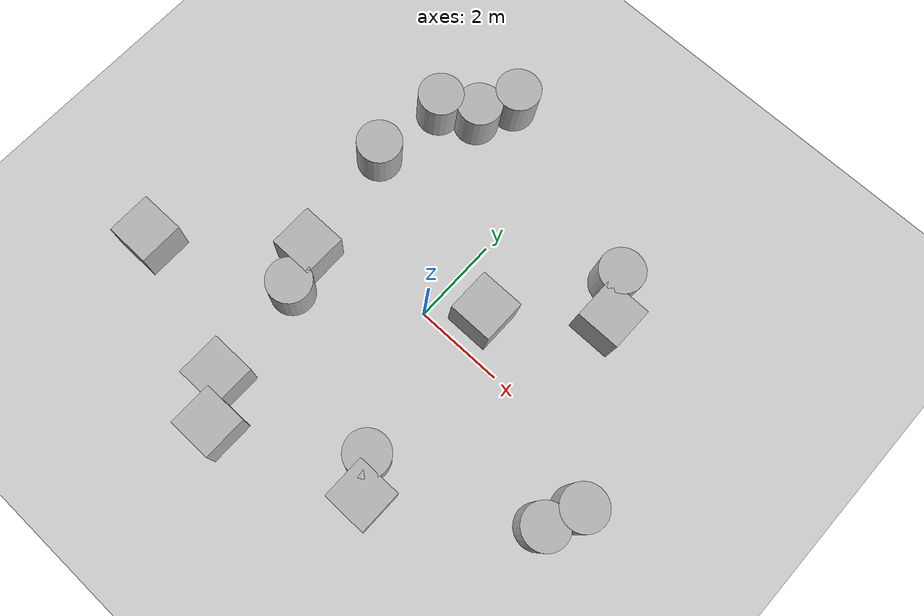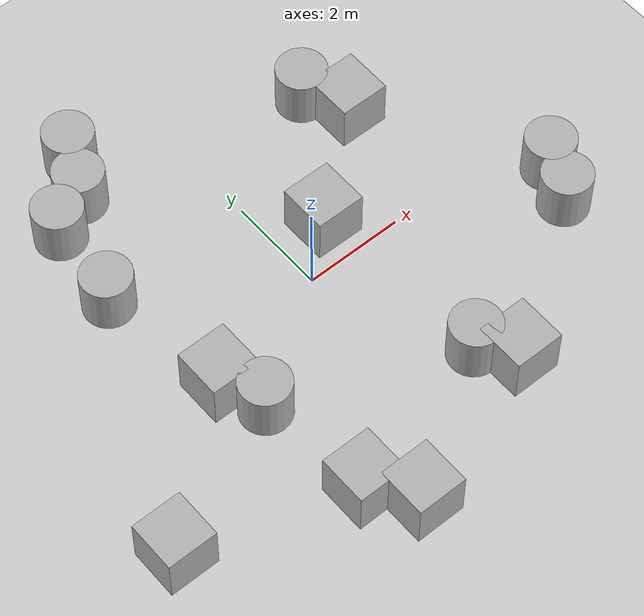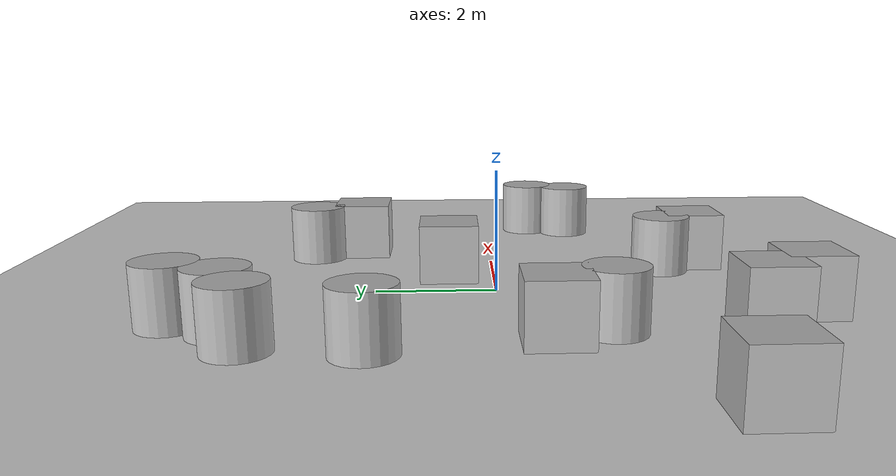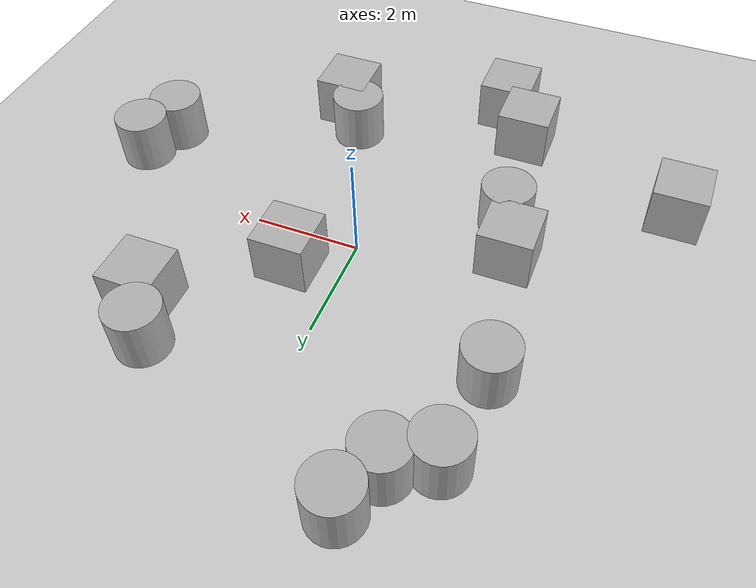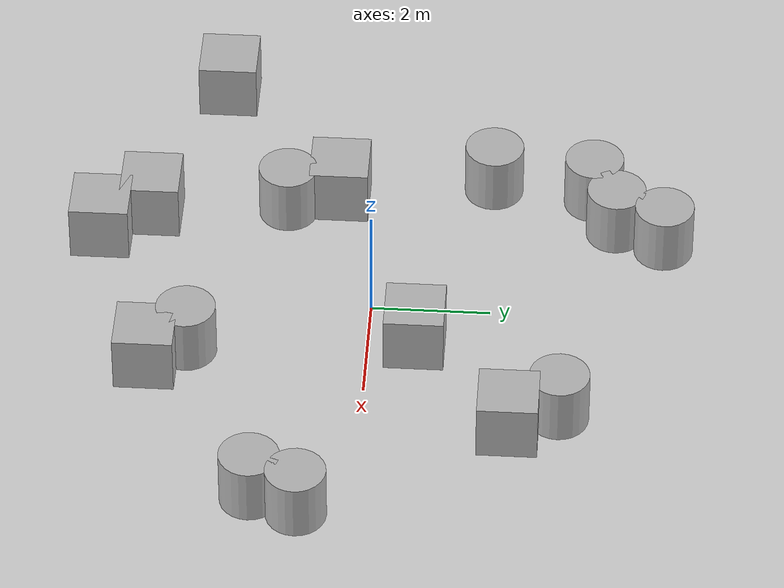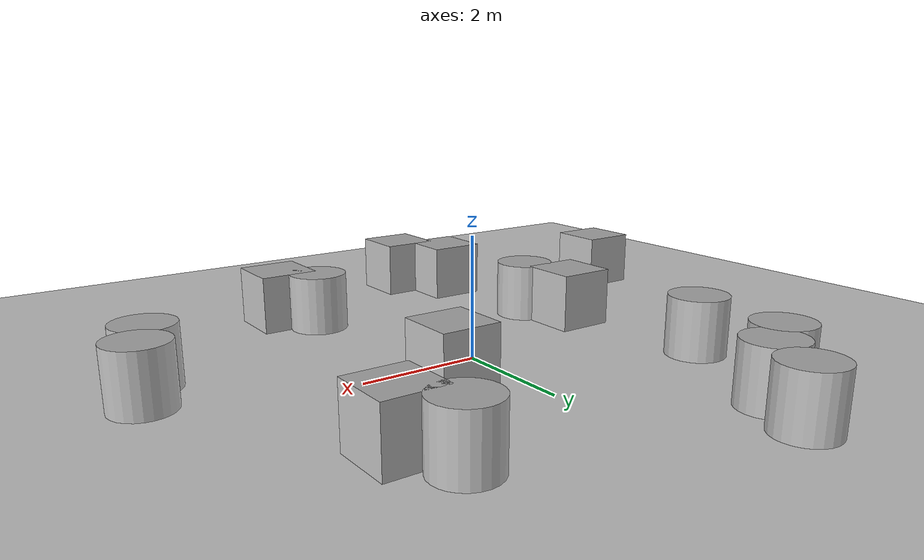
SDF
<sdf version='1.9'>
  <world name='empty'>
    <physics name='1ms' type='ignored'>
      <max_step_size>0.001</max_step_size>
      <real_time_factor>1</real_time_factor>
      <real_time_update_rate>1000</real_time_update_rate>
    </physics>
    <plugin name='gz::sim::systems::Physics' filename='gz-sim-physics-system'/>
    <plugin name='gz::sim::systems::UserCommands' filename='gz-sim-user-commands-system'/>
    <plugin name='gz::sim::systems::SceneBroadcaster' filename='gz-sim-scene-broadcaster-system'/>
    <plugin name='gz::sim::systems::Contact' filename='gz-sim-contact-system'/>
    <gravity>0 0 -9.8000000000000007</gravity>
    <magnetic_field>5.5644999999999998e-06 2.2875799999999999e-05 -4.2388400000000002e-05</magnetic_field>
    <atmosphere type='adiabatic'/>
    <scene>
      <ambient>0.400000006 0.400000006 0.400000006 1</ambient>
      <background>0.699999988 0.699999988 0.699999988 1</background>
      <shadows>true</shadows>
    </scene>
    <model name='ground_plane'>
      <static>true</static>
      <link name='link'>
        <collision name='collision'>
          <geometry>
            <plane>
              <normal>0 0 1</normal>
              <size>100 100</size>
            </plane>
          </geometry>
          <surface>
            <friction>
              <ode/>
            </friction>
            <bounce/>
            <contact/>
          </surface>
        </collision>
        <visual name='visual'>
          <geometry>
            <plane>
              <normal>0 0 1</normal>
              <size>100 100</size>
            </plane>
          </geometry>
          <material>
            <ambient>0.800000012 0.800000012 0.800000012 1</ambient>
            <diffuse>0.800000012 0.800000012 0.800000012 1</diffuse>
            <specular>0.800000012 0.800000012 0.800000012 1</specular>
          </material>
        </visual>
        <pose>0 0 0 0 0 0</pose>
        <inertial>
          <pose>0 0 0 0 0 0</pose>
          <mass>1</mass>
          <inertia>
            <ixx>1</ixx>
            <ixy>0</ixy>
            <ixz>0</ixz>
            <iyy>1</iyy>
            <iyz>0</iyz>
            <izz>1</izz>
          </inertia>
        </inertial>
        <enable_wind>false</enable_wind>
      </link>
      <pose>0 0 0 0 0 0</pose>
      <self_collide>false</self_collide>
    </model>
    <model name='box'>
      <pose>2.8955198046788149 2.422949456232101 0.49999999019945601 1.4436154107906532e-08 1.5910388242369058e-09 6.8927014947448789e-06</pose>
      <link name='box_link'>
        <inertial>
          <inertia>
            <ixx>0.16666</ixx>
            <ixy>0</ixy>
            <ixz>0</ixz>
            <iyy>0.16666</iyy>
            <iyz>0</iyz>
            <izz>0.16666</izz>
          </inertia>
          <mass>1</mass>
          <pose>0 0 0 0 0 0</pose>
        </inertial>
        <collision name='box_collision'>
          <geometry>
            <box>
              <size>1 1 1</size>
            </box>
          </geometry>
          <surface>
            <friction>
              <ode/>
            </friction>
            <bounce/>
            <contact/>
          </surface>
        </collision>
        <visual name='box_visual'>
          <geometry>
            <box>
              <size>1 1 1</size>
            </box>
          </geometry>
          <material>
            <ambient>0.300000012 0.300000012 0.300000012 1</ambient>
            <diffuse>0.699999988 0.699999988 0.699999988 1</diffuse>
            <specular>1 1 1 1</specular>
          </material>
        </visual>
        <pose>0 0 0 0 0 0</pose>
        <enable_wind>false</enable_wind>
      </link>
      <static>false</static>
      <self_collide>false</self_collide>
    </model>
    <model name='cylinder'>
      <pose>-1.7473746146131668 4.859629513451468 0.4999994130283707 -2.6351230381593018e-06 2.0729421777603828e-06 0.0013746382187452217</pose>
      <link name='cylinder_link'>
        <inertial>
          <inertia>
            <ixx>0.14580000000000001</ixx>
            <ixy>0</ixy>
            <ixz>0</ixz>
            <iyy>0.14580000000000001</iyy>
            <iyz>0</iyz>
            <izz>0.125</izz>
          </inertia>
          <mass>1</mass>
          <pose>0 0 0 0 0 0</pose>
        </inertial>
        <collision name='cylinder_collision'>
          <geometry>
            <cylinder>
              <radius>0.5</radius>
              <length>1</length>
            </cylinder>
          </geometry>
          <surface>
            <friction>
              <ode/>
            </friction>
            <bounce/>
            <contact/>
          </surface>
        </collision>
        <visual name='cylinder_visual'>
          <geometry>
            <cylinder>
              <radius>0.5</radius>
              <length>1</length>
            </cylinder>
          </geometry>
          <material>
            <ambient>0.300000012 0.300000012 0.300000012 1</ambient>
            <diffuse>0.699999988 0.699999988 0.699999988 1</diffuse>
            <specular>1 1 1 1</specular>
          </material>
        </visual>
        <pose>0 0 0 0 0 0</pose>
        <enable_wind>false</enable_wind>
      </link>
      <static>false</static>
      <self_collide>false</self_collide>
    </model>
    <model name='box_0'>
      <pose>1.6675334804795436 -3.6423582923371884 0.49999999019927782 1.4413939247340883e-08 1.5913031419954583e-09 7.5646915356407136e-06</pose>
      <link name='box_link'>
        <inertial>
          <inertia>
            <ixx>0.16666</ixx>
            <ixy>0</ixy>
            <ixz>0</ixz>
            <iyy>0.16666</iyy>
            <iyz>0</iyz>
            <izz>0.16666</izz>
          </inertia>
          <mass>1</mass>
          <pose>0 0 0 0 0 0</pose>
        </inertial>
        <collision name='box_collision'>
          <geometry>
            <box>
              <size>1 1 1</size>
            </box>
          </geometry>
          <surface>
            <friction>
              <ode/>
            </friction>
            <bounce/>
            <contact/>
          </surface>
        </collision>
        <visual name='box_visual'>
          <geometry>
            <box>
              <size>1 1 1</size>
            </box>
          </geometry>
          <material>
            <ambient>0.300000012 0.300000012 0.300000012 1</ambient>
            <diffuse>0.699999988 0.699999988 0.699999988 1</diffuse>
            <specular>1 1 1 1</specular>
          </material>
        </visual>
        <pose>0 0 0 0 0 0</pose>
        <enable_wind>false</enable_wind>
      </link>
      <static>false</static>
      <self_collide>false</self_collide>
    </model>
    <model name='cylinder_0'>
      <pose>-3.1072249062101207 1.9207255935575056 0.49999942638036005 5.4093395553859492e-19 1.4932068541439576e-19 2.3986114863283139e-20</pose>
      <link name='cylinder_link'>
        <inertial>
          <inertia>
            <ixx>0.14580000000000001</ixx>
            <ixy>0</ixy>
            <ixz>0</ixz>
            <iyy>0.14580000000000001</iyy>
            <iyz>0</iyz>
            <izz>0.125</izz>
          </inertia>
          <mass>1</mass>
          <pose>0 0 0 0 0 0</pose>
        </inertial>
        <collision name='cylinder_collision'>
          <geometry>
            <cylinder>
              <radius>0.5</radius>
              <length>1</length>
            </cylinder>
          </geometry>
          <surface>
            <friction>
              <ode/>
            </friction>
            <bounce/>
            <contact/>
          </surface>
        </collision>
        <visual name='cylinder_visual'>
          <geometry>
            <cylinder>
              <radius>0.5</radius>
              <length>1</length>
            </cylinder>
          </geometry>
          <material>
            <ambient>0.300000012 0.300000012 0.300000012 1</ambient>
            <diffuse>0.699999988 0.699999988 0.699999988 1</diffuse>
            <specular>1 1 1 1</specular>
          </material>
        </visual>
        <pose>0 0 0 0 0 0</pose>
        <enable_wind>false</enable_wind>
      </link>
      <static>false</static>
      <self_collide>false</self_collide>
    </model>
    <model name='box_1'>
      <pose>-5.2972043361892682 -2.816574243135836 0.49999999990199806 6.2287739151293738e-22 9.3279666454713669e-22 -3.6315533669320137e-22</pose>
      <link name='box_link'>
        <inertial>
          <inertia>
            <ixx>0.16666</ixx>
            <ixy>0</ixy>
            <ixz>0</ixz>
            <iyy>0.16666</iyy>
            <iyz>0</iyz>
            <izz>0.16666</izz>
          </inertia>
          <mass>1</mass>
          <pose>0 0 0 0 0 0</pose>
        </inertial>
        <collision name='box_collision'>
          <geometry>
            <box>
              <size>1 1 1</size>
            </box>
          </geometry>
          <surface>
            <friction>
              <ode/>
            </friction>
            <bounce/>
            <contact/>
          </surface>
        </collision>
        <visual name='box_visual'>
          <geometry>
            <box>
              <size>1 1 1</size>
            </box>
          </geometry>
          <material>
            <ambient>0.300000012 0.300000012 0.300000012 1</ambient>
            <diffuse>0.699999988 0.699999988 0.699999988 1</diffuse>
            <specular>1 1 1 1</specular>
          </material>
        </visual>
        <pose>0 0 0 0 0 0</pose>
        <enable_wind>false</enable_wind>
      </link>
      <static>false</static>
      <self_collide>false</self_collide>
    </model>
    <model name='cylinder_1'>
      <pose>4.9319630568409254 -0.90514425743957783 0.4999999594872554 3.2163455603664329e-07 -1.3285701077192767e-07 0.00087675485855286562</pose>
      <link name='cylinder_link'>
        <inertial>
          <inertia>
            <ixx>0.14580000000000001</ixx>
            <ixy>0</ixy>
            <ixz>0</ixz>
            <iyy>0.14580000000000001</iyy>
            <iyz>0</iyz>
            <izz>0.125</izz>
          </inertia>
          <mass>1</mass>
          <pose>0 0 0 0 0 0</pose>
        </inertial>
        <collision name='cylinder_collision'>
          <geometry>
            <cylinder>
              <radius>0.5</radius>
              <length>1</length>
            </cylinder>
          </geometry>
          <surface>
            <friction>
              <ode/>
            </friction>
            <bounce/>
            <contact/>
          </surface>
        </collision>
        <visual name='cylinder_visual'>
          <geometry>
            <cylinder>
              <radius>0.5</radius>
              <length>1</length>
            </cylinder>
          </geometry>
          <material>
            <ambient>0.300000012 0.300000012 0.300000012 1</ambient>
            <diffuse>0.699999988 0.699999988 0.699999988 1</diffuse>
            <specular>1 1 1 1</specular>
          </material>
        </visual>
        <pose>0 0 0 0 0 0</pose>
        <enable_wind>false</enable_wind>
      </link>
      <static>false</static>
      <self_collide>false</self_collide>
    </model>
    <model name='box_2'>
      <pose>-1.4953179338906146 -4.6894042654258241 0.49999999019379032 1.9595938154935133e-08 4.525461178005953e-11 6.8923212468580184e-06</pose>
      <link name='box_link'>
        <inertial>
          <inertia>
            <ixx>0.16666</ixx>
            <ixy>0</ixy>
            <ixz>0</ixz>
            <iyy>0.16666</iyy>
            <iyz>0</iyz>
            <izz>0.16666</izz>
          </inertia>
          <mass>1</mass>
          <pose>0 0 0 0 0 0</pose>
        </inertial>
        <collision name='box_collision'>
          <geometry>
            <box>
              <size>1 1 1</size>
            </box>
          </geometry>
          <surface>
            <friction>
              <ode/>
            </friction>
            <bounce/>
            <contact/>
          </surface>
        </collision>
        <visual name='box_visual'>
          <geometry>
            <box>
              <size>1 1 1</size>
            </box>
          </geometry>
          <material>
            <ambient>0.300000012 0.300000012 0.300000012 1</ambient>
            <diffuse>0.699999988 0.699999988 0.699999988 1</diffuse>
            <specular>1 1 1 1</specular>
          </material>
        </visual>
        <pose>0 0 0 0 0 0</pose>
        <enable_wind>false</enable_wind>
      </link>
      <static>false</static>
      <self_collide>false</self_collide>
    </model>
    <model name='cylinder_2'>
      <pose>-2.3493470615168444 -1.5698016897506637 0.50000000821242019 2.7873470608476681e-08 6.4095386947773985e-09 1.8107041937236998e-06</pose>
      <link name='cylinder_link'>
        <inertial>
          <inertia>
            <ixx>0.14580000000000001</ixx>
            <ixy>0</ixy>
            <ixz>0</ixz>
            <iyy>0.14580000000000001</iyy>
            <iyz>0</iyz>
            <izz>0.125</izz>
          </inertia>
          <mass>1</mass>
          <pose>0 0 0 0 0 0</pose>
        </inertial>
        <collision name='cylinder_collision'>
          <geometry>
            <cylinder>
              <radius>0.5</radius>
              <length>1</length>
            </cylinder>
          </geometry>
          <surface>
            <friction>
              <ode/>
            </friction>
            <bounce/>
            <contact/>
          </surface>
        </collision>
        <visual name='cylinder_visual'>
          <geometry>
            <cylinder>
              <radius>0.5</radius>
              <length>1</length>
            </cylinder>
          </geometry>
          <material>
            <ambient>0.300000012 0.300000012 0.300000012 1</ambient>
            <diffuse>0.699999988 0.699999988 0.699999988 1</diffuse>
            <specular>1 1 1 1</specular>
          </material>
        </visual>
        <pose>0 0 0 0 0 0</pose>
        <enable_wind>false</enable_wind>
      </link>
      <static>false</static>
      <self_collide>false</self_collide>
    </model>
    <model name='box_3'>
      <pose>0.92821772300529237 0.78330321521873847 0.49999999990199806 6.2287739151293738e-22 9.3279666454713669e-22 -3.6315533669320137e-22</pose>
      <link name='box_link'>
        <inertial>
          <inertia>
            <ixx>0.16666</ixx>
            <ixy>0</ixy>
            <ixz>0</ixz>
            <iyy>0.16666</iyy>
            <iyz>0</iyz>
            <izz>0.16666</izz>
          </inertia>
          <mass>1</mass>
          <pose>0 0 0 0 0 0</pose>
        </inertial>
        <collision name='box_collision'>
          <geometry>
            <box>
              <size>1 1 1</size>
            </box>
          </geometry>
          <surface>
            <friction>
              <ode/>
            </friction>
            <bounce/>
            <contact/>
          </surface>
        </collision>
        <visual name='box_visual'>
          <geometry>
            <box>
              <size>1 1 1</size>
            </box>
          </geometry>
          <material>
            <ambient>0.300000012 0.300000012 0.300000012 1</ambient>
            <diffuse>0.699999988 0.699999988 0.699999988 1</diffuse>
            <specular>1 1 1 1</specular>
          </material>
        </visual>
        <pose>0 0 0 0 0 0</pose>
        <enable_wind>false</enable_wind>
      </link>
      <static>false</static>
      <self_collide>false</self_collide>
    </model>
    <model name='cylinder_3'>
      <pose>2.4600202488749376 3.2397383804145283 0.50000000807467226 -2.7873661132118396e-08 -6.7729716646524612e-09 2.1551484449941091e-06</pose>
      <link name='cylinder_link'>
        <inertial>
          <inertia>
            <ixx>0.14580000000000001</ixx>
            <ixy>0</ixy>
            <ixz>0</ixz>
            <iyy>0.14580000000000001</iyy>
            <iyz>0</iyz>
            <izz>0.125</izz>
          </inertia>
          <mass>1</mass>
          <pose>0 0 0 0 0 0</pose>
        </inertial>
        <collision name='cylinder_collision'>
          <geometry>
            <cylinder>
              <radius>0.5</radius>
              <length>1</length>
            </cylinder>
          </geometry>
          <surface>
            <friction>
              <ode/>
            </friction>
            <bounce/>
            <contact/>
          </surface>
        </collision>
        <visual name='cylinder_visual'>
          <geometry>
            <cylinder>
              <radius>0.5</radius>
              <length>1</length>
            </cylinder>
          </geometry>
          <material>
            <ambient>0.300000012 0.300000012 0.300000012 1</ambient>
            <diffuse>0.699999988 0.699999988 0.699999988 1</diffuse>
            <specular>1 1 1 1</specular>
          </material>
        </visual>
        <pose>0 0 0 0 0 0</pose>
        <enable_wind>false</enable_wind>
      </link>
      <static>false</static>
      <self_collide>false</self_collide>
    </model>
    <model name='cylinder_4'>
      <pose>4.6195013079854705 -1.6778222322685605 0.49999604740406572 1.6797118655607366e-06 -6.8564739943360976e-07 0.00083268964633627406</pose>
      <link name='cylinder_link'>
        <inertial>
          <inertia>
            <ixx>0.14580000000000001</ixx>
            <ixy>0</ixy>
            <ixz>0</ixz>
            <iyy>0.14580000000000001</iyy>
            <iyz>0</iyz>
            <izz>0.125</izz>
          </inertia>
          <mass>1</mass>
          <pose>0 0 0 0 0 0</pose>
        </inertial>
        <collision name='cylinder_collision'>
          <geometry>
            <cylinder>
              <radius>0.5</radius>
              <length>1</length>
            </cylinder>
          </geometry>
          <surface>
            <friction>
              <ode/>
            </friction>
            <bounce/>
            <contact/>
          </surface>
        </collision>
        <visual name='cylinder_visual'>
          <geometry>
            <cylinder>
              <radius>0.5</radius>
              <length>1</length>
            </cylinder>
          </geometry>
          <material>
            <ambient>0.300000012 0.300000012 0.300000012 1</ambient>
            <diffuse>0.699999988 0.699999988 0.699999988 1</diffuse>
            <specular>1 1 1 1</specular>
          </material>
        </visual>
        <pose>0 0 0 0 0 0</pose>
        <enable_wind>false</enable_wind>
      </link>
      <static>false</static>
      <self_collide>false</self_collide>
    </model>
    <model name='cylinder_5'>
      <pose>1.2056666007329873 -3.0040759938340664 0.50000000803661959 -2.7880322579829236e-08 -6.8502695361763909e-09 3.0263099536654864e-06</pose>
      <link name='cylinder_link'>
        <inertial>
          <inertia>
            <ixx>0.14580000000000001</ixx>
            <ixy>0</ixy>
            <ixz>0</ixz>
            <iyy>0.14580000000000001</iyy>
            <iyz>0</iyz>
            <izz>0.125</izz>
          </inertia>
          <mass>1</mass>
          <pose>0 0 0 0 0 0</pose>
        </inertial>
        <collision name='cylinder_collision'>
          <geometry>
            <cylinder>
              <radius>0.5</radius>
              <length>1</length>
            </cylinder>
          </geometry>
          <surface>
            <friction>
              <ode/>
            </friction>
            <bounce/>
            <contact/>
          </surface>
        </collision>
        <visual name='cylinder_visual'>
          <geometry>
            <cylinder>
              <radius>0.5</radius>
              <length>1</length>
            </cylinder>
          </geometry>
          <material>
            <ambient>0.300000012 0.300000012 0.300000012 1</ambient>
            <diffuse>0.699999988 0.699999988 0.699999988 1</diffuse>
            <specular>1 1 1 1</specular>
          </material>
        </visual>
        <pose>0 0 0 0 0 0</pose>
        <enable_wind>false</enable_wind>
      </link>
      <static>false</static>
      <self_collide>false</self_collide>
    </model>
    <model name='box_4'>
      <pose>-2.6693122247263474 -0.70075282427014862 0.49999999020025165 -1.4545703689735727e-08 -1.425394655847578e-09 3.8268909395148495e-06</pose>
      <link name='box_link'>
        <inertial>
          <inertia>
            <ixx>0.16666</ixx>
            <ixy>0</ixy>
            <ixz>0</ixz>
            <iyy>0.16666</iyy>
            <iyz>0</iyz>
            <izz>0.16666</izz>
          </inertia>
          <mass>1</mass>
          <pose>0 0 0 0 0 0</pose>
        </inertial>
        <collision name='box_collision'>
          <geometry>
            <box>
              <size>1 1 1</size>
            </box>
          </geometry>
          <surface>
            <friction>
              <ode/>
            </friction>
            <bounce/>
            <contact/>
          </surface>
        </collision>
        <visual name='box_visual'>
          <geometry>
            <box>
              <size>1 1 1</size>
            </box>
          </geometry>
          <material>
            <ambient>0.300000012 0.300000012 0.300000012 1</ambient>
            <diffuse>0.699999988 0.699999988 0.699999988 1</diffuse>
            <specular>1 1 1 1</specular>
          </material>
        </visual>
        <pose>0 0 0 0 0 0</pose>
        <enable_wind>false</enable_wind>
      </link>
      <static>false</static>
      <self_collide>false</self_collide>
    </model>
    <model name='cylinder_6'>
      <pose>-2.1334948331931591 4.0366824879596148 0.50000016351611054 -7.5539919522653964e-07 5.3454346225239965e-07 0.0005636502496085238</pose>
      <link name='cylinder_link'>
        <inertial>
          <inertia>
            <ixx>0.14580000000000001</ixx>
            <ixy>0</ixy>
            <ixz>0</ixz>
            <iyy>0.14580000000000001</iyy>
            <iyz>0</iyz>
            <izz>0.125</izz>
          </inertia>
          <mass>1</mass>
          <pose>0 0 0 0 0 0</pose>
        </inertial>
        <collision name='cylinder_collision'>
          <geometry>
            <cylinder>
              <radius>0.5</radius>
              <length>1</length>
            </cylinder>
          </geometry>
          <surface>
            <friction>
              <ode/>
            </friction>
            <bounce/>
            <contact/>
          </surface>
        </collision>
        <visual name='cylinder_visual'>
          <geometry>
            <cylinder>
              <radius>0.5</radius>
              <length>1</length>
            </cylinder>
          </geometry>
          <material>
            <ambient>0.300000012 0.300000012 0.300000012 1</ambient>
            <diffuse>0.699999988 0.699999988 0.699999988 1</diffuse>
            <specular>1 1 1 1</specular>
          </material>
        </visual>
        <pose>0 0 0 0 0 0</pose>
        <enable_wind>false</enable_wind>
      </link>
      <static>false</static>
      <self_collide>false</self_collide>
    </model>
    <model name='cylinder_7'>
      <pose>-2.8990774373477208 3.6360583298506985 0.50000011436231806 9.4426977686404757e-07 -2.2756204655798617e-06 -0.0019294887743419404</pose>
      <link name='cylinder_link'>
        <inertial>
          <inertia>
            <ixx>0.14580000000000001</ixx>
            <ixy>0</ixy>
            <ixz>0</ixz>
            <iyy>0.14580000000000001</iyy>
            <iyz>0</iyz>
            <izz>0.125</izz>
          </inertia>
          <mass>1</mass>
          <pose>0 0 0 0 0 0</pose>
        </inertial>
        <collision name='cylinder_collision'>
          <geometry>
            <cylinder>
              <radius>0.5</radius>
              <length>1</length>
            </cylinder>
          </geometry>
          <surface>
            <friction>
              <ode/>
            </friction>
            <bounce/>
            <contact/>
          </surface>
        </collision>
        <visual name='cylinder_visual'>
          <geometry>
            <cylinder>
              <radius>0.5</radius>
              <length>1</length>
            </cylinder>
          </geometry>
          <material>
            <ambient>0.300000012 0.300000012 0.300000012 1</ambient>
            <diffuse>0.699999988 0.699999988 0.699999988 1</diffuse>
            <specular>1 1 1 1</specular>
          </material>
        </visual>
        <pose>0 0 0 0 0 0</pose>
        <enable_wind>false</enable_wind>
      </link>
      <static>false</static>
      <self_collide>false</self_collide>
    </model>
    <model name='box_5'>
      <pose>-2.0982399300756218 -3.8854219438798143 0.49999999019850749 -1.9586400995554599e-08 -6.099964128274059e-12 6.928676866658137e-06</pose>
      <link name='box_link'>
        <inertial>
          <inertia>
            <ixx>0.16666</ixx>
            <ixy>0</ixy>
            <ixz>0</ixz>
            <iyy>0.16666</iyy>
            <iyz>0</iyz>
            <izz>0.16666</izz>
          </inertia>
          <mass>1</mass>
          <pose>0 0 0 0 0 0</pose>
        </inertial>
        <collision name='box_collision'>
          <geometry>
            <box>
              <size>1 1 1</size>
            </box>
          </geometry>
          <surface>
            <friction>
              <ode/>
            </friction>
            <bounce/>
            <contact/>
          </surface>
        </collision>
        <visual name='box_visual'>
          <geometry>
            <box>
              <size>1 1 1</size>
            </box>
          </geometry>
          <material>
            <ambient>0.300000012 0.300000012 0.300000012 1</ambient>
            <diffuse>0.699999988 0.699999988 0.699999988 1</diffuse>
            <specular>1 1 1 1</specular>
          </material>
        </visual>
        <pose>0 0 0 0 0 0</pose>
        <enable_wind>false</enable_wind>
      </link>
      <static>false</static>
      <self_collide>false</self_collide>
    </model>
    <light name='sun' type='directional'>
      <pose>0 0 10 0 0 0</pose>
      <cast_shadows>true</cast_shadows>
      <intensity>1</intensity>
      <direction>-0.5 0.10000000000000001 -0.90000000000000002</direction>
      <diffuse>0.800000012 0.800000012 0.800000012 1</diffuse>
      <specular>0.200000003 0.200000003 0.200000003 1</specular>
      <attenuation>
        <range>1000</range>
        <linear>0.01</linear>
        <constant>0.90000000000000002</constant>
        <quadratic>0.001</quadratic>
      </attenuation>
      <spot>
        <inner_angle>0</inner_angle>
        <outer_angle>0</outer_angle>
        <falloff>0</falloff>
      </spot>
    </light>
  </world>
</sdf>
